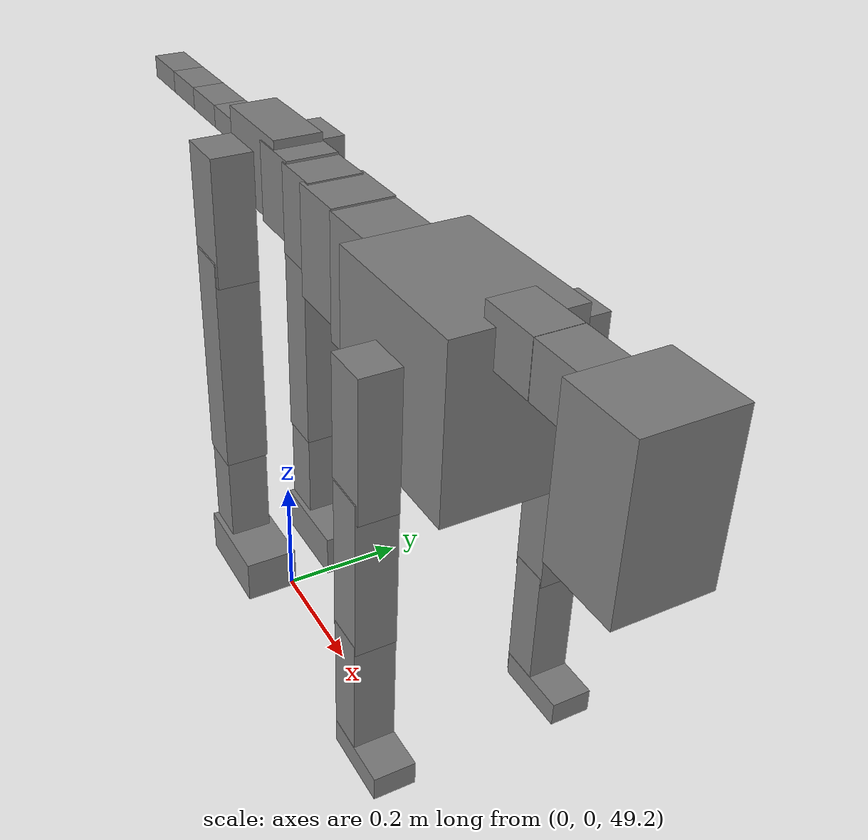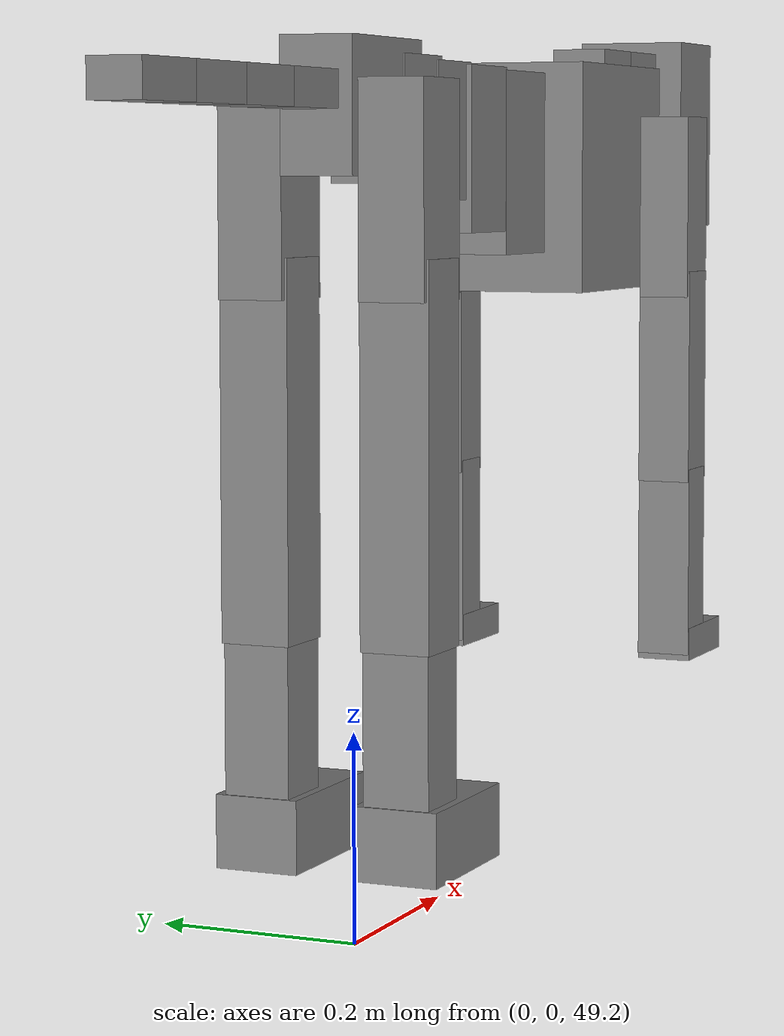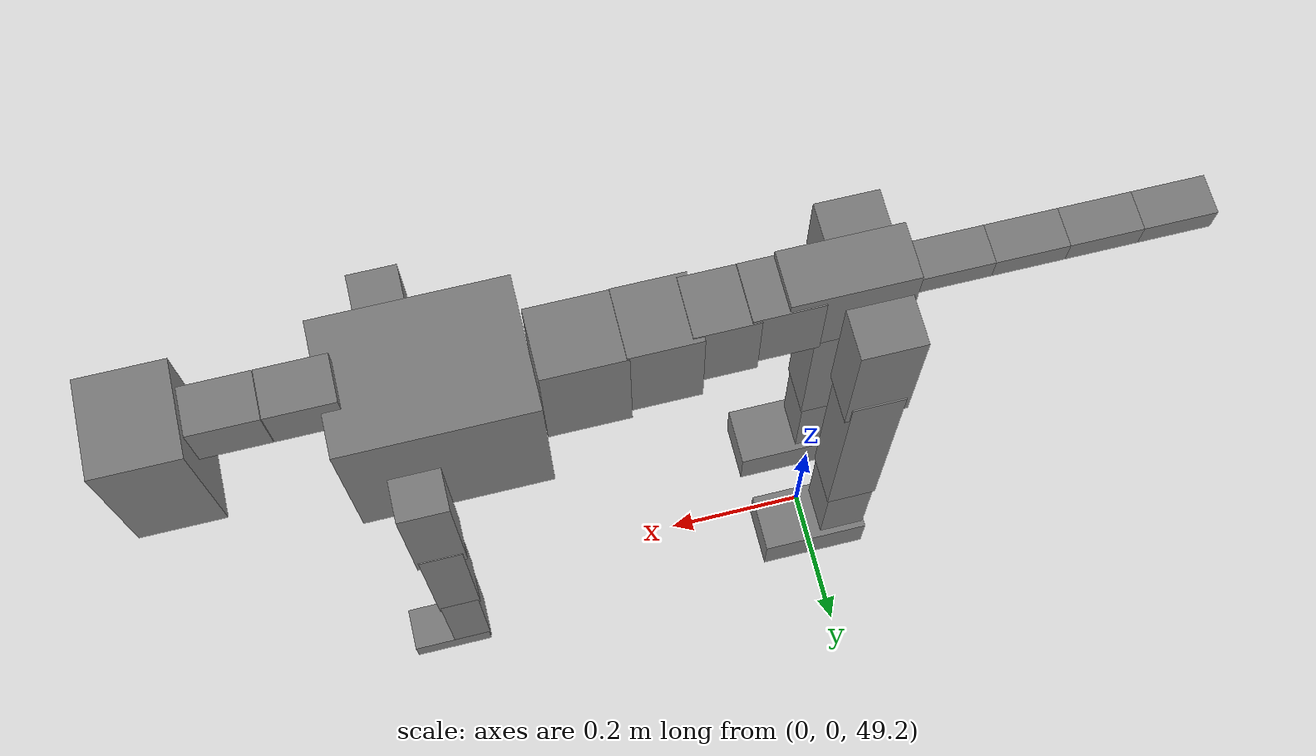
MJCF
<mujoco model="dog">

    <default>
        <joint armature="0.02" stiffness="1" damping="0.2" limited="true"/>
        <geom condim="3" friction="1 0.05 0.05" margin="0.01"/>
        <motor ctrllimited="true" ctrlrange="-1.0 1.0" forcelimited="true" gear="50"/>
    </default>

    <compiler inertiafromgeom="true" angle="radian"/>

    <option timestep="0.016" iterations="50" tolerance="1e-10" solver="Newton" jacobian="dense" cone="pyramidal"/>

    <size nconmax="20000" njmax="60000" nstack="5000000"/>
    <visual>
        <map force="0.1" zfar="30"/>
        <rgba haze="0.15 0.25 0.35 1"/>
        <quality shadowsize="2048"/>
        <global offwidth="800" offheight="800"/>
    </visual>

    <asset>
        <texture type="skybox" builtin="gradient" rgb1="0.3 0.5 0.7" rgb2="0 0 0" width="512" height="512"/>
        <texture name="texplane" type="2d" builtin="checker" rgb1=".2 .3 .4" rgb2=".1 0.15 0.2" width="512" height="512"
                 mark="cross" markrgb=".8 .8 .8"/>
        <texture name="texgeom" type="cube" builtin="flat" mark="cross" width="127" height="1278" rgb1="0.8 0.6 0.4"
                 rgb2="0.8 0.6 0.4" markrgb="1 1 1" random="0.01"/>

        <material name="matplane" reflectance="0.3" texture="texplane" texrepeat="1 1" texuniform="true"/>
        <material name="matgeom" texture="texgeom" texuniform="true" rgba="0.8 0.6 .4 1"/>
    </asset>

    <worldbody>
        <geom name="floor" pos="0 0 0" size="0 0 .25" type="plane" material="matplane" condim="3"/>

        <light directional="false" diffuse=".2 .2 .2" specular="0 0 0" pos="0 0 5" dir="0 0 -1" castshadow="false"/>
        <light mode="targetbodycom" target="torso" directional="false" diffuse=".8 .8 .8" specular="0.3 0.3 0.3"
               pos="0 0 4.0" dir="0 0 -1"/>

        <body name="root" pos="0 0 50">
            <freejoint name="root_1"/>
            <geom type="box" pos="0 0 -0.02" size="0.0774  0.0358  0.063" density="2030"/>

            <body name="spine1" pos="0.054 0 0">
                <joint name="spine1_y" axis="0 1 0" range="0 0.7" limited="true"/>
                <geom type="box" pos="0.02375 0 -0.03" size="0.04375  0.0375  0.05985" density="2030"/>

                <body name="spine2" pos="0.0612 0 0">
                    <joint name="spine2_y" axis="0 1 0" range="-0.15 0.15" limited="true"/>
                    <geom type="box" pos="0.03555  0  -0.04" size="0.04055  0.039  0.06615" density="2030"/>

                    <body name="spine3" pos="0.0730 0 0">
                        <joint name="spine3_y" axis="0 1 0" range="-0.15 0.15" limited="true"/>
                        <geom type="box" pos="0.03555  0  -0.057" size="0.04555  0.0445  0.081" density="2030"/>

                        <body name="spine4" pos="0.0780 0 0">
                            <joint name="spine4_y" axis="0 1 0" range="-0.15 0.15" limited="true"/>
                            <geom type="box" pos="0.05265  0  -0.07" size="0.05265  0.045  0.09135" density="2030"/>

                            <body name="torso" pos="0.1082 0 0">
                                <joint name="torso_y" axis="0 1 0" range="-0.15 0.15" limited="true"/>
                                <geom type="box" pos="0.11925  0  -0.085" size="0.11925  0.085  0.11745"
                                      density="2030"/>

                                <body name="neck1" pos="0.2160  0   0.0180">
                                    <joint name="neck1_y" axis="0 1 0" range="-1.2  -1" limited="true"/>
                                    <geom type="box" pos="0.0423  0  0" size="0.0423  0.03  0.036" density="2325"/>

                                    <body name="neck2" pos="0.0853  0  0">
                                        <joint name="neck2_y" axis="0 1 0" range="0.1  0" limited="true"/>
                                        <geom type="box" pos="0.0423  0  0" size="0.0423  0.03  0.036" density="2325"/>

                                        <body name="head" pos="0.0853  0  0">
                                            <joint name="head_y" axis="0 1 0" range="-0.3  -0.2" limited="true"/>
                                            <geom type="box" pos="0.0531  0  -0.055" size="0.0531  0.06  0.1044"
                                                  density="4030"/>

                                        </body>
                                    </body>
                                </body>

                                <body name="front_shoulder" pos="0.156  0   -0.0480">
                                    <joint name="front_shoulder_y" axis="0 1 0" range="-1 1.5" limited="true"/>
                                    <geom type="box" pos="0 0.13 -0.0680" size="0.0308  0.0263  0.0946" density="1158"/>
                                    <geom type="box" pos="0 -0.13 -0.0680" size="0.0308  0.0263  0.0946"
                                          density="1158"/>

                                    <body name="front_elbow" pos="0  0  -0.1359">
                                        <joint name="front_elbow_y" axis="0 1 0" range="-2 0" limited="true"/>
                                        <geom type="box" pos="0 0.13 -0.1113" size="0.0271  0.0277  0.1113"
                                              density="1081"/>
                                        <geom type="box" pos="0 -0.13 -0.1113" size="0.0271  0.0277  0.1113"
                                              density="1081"/>

                                        <body name="front_wrist" pos="0  0  -0.2225">
                                            <joint name="front_wrist_y" axis="0 1 0" range="-0.2 0" limited="true"/>
                                            <geom type="box" pos="0 0.13 -0.0859" size="0.0252  0.0280  0.0991"
                                                  density="1664"/>
                                            <geom type="box" pos="0 -0.13 -0.0859" size="0.0252  0.0280  0.0991"
                                                  density="1664"/>

                                            <body name="front_finger_end" pos="0  0  -0.1719">
                                                <joint name="front_finger_y" axis="0 1 0" range="-0.4 1"
                                                       limited="true"/>
                                                <geom type="box" pos="0.0284  0.13  -0.0022"
                                                      size="0.0520  0.0284  0.0172" density="1515"/>
                                                <geom type="box" pos="0.0284  -0.13  -0.0022"
                                                      size="0.0520  0.0284  0.0172" density="1515"/>

                                            </body>

                                        </body>
                                    </body>
                                </body>

                            </body>
                        </body>
                    </body>
                </body>
            </body>

            <body name="back_hip" pos="-0.03 0 -0.018">
                <joint name="back_hip_y" axis="0 1 0" range="-1.5 0.3" limited="true"/>
                <geom type="box" pos="0 0.07 -0.0772" size="0.0407  0.0319  0.1000" density="1154"/>
                <geom type="box" pos="0 -0.07 -0.0772" size="0.0407  0.0319  0.1000" density="1154"/>

                <body name="back_knee" pos="0  0  -0.1543">
                    <joint name="back_knee_y" axis="0 1 0" range="0 2.8" limited="true"/>
                    <geom type="box" pos="0 0.07 -0.1622" size="0.0344  0.0340  0.1777" density="1227"/>
                    <geom type="box" pos="0 -0.07 -0.1622" size="0.0344  0.0340  0.1777" density="1227"/>

                    <body name="back_ankle" pos="0  0  -0.3243">
                        <joint name="back_ankle_y" axis="0 1 0" range="-2.2 0" limited="true"/>
                        <geom type="box" pos="0 0.07 -0.0862" size="0.0323  0.0323  0.0975" density="1284"/>
                        <geom type="box" pos="0 -0.07 -0.0862" size="0.0323  0.0323  0.0975" density="1284"/>

                        <body name="back_toe_end" pos="0  0  -0.1724">
                            <joint name="back_toe_y" axis="0 1 0" range="-0.4 1" limited="true"/>
                            <geom type="box" pos="0.0411  0.07  -0.0198" size="0.0754  0.0411  0.0348" density="1515"/>
                            <geom type="box" pos="0.0411  -0.07  -0.0198" size="0.0754  0.0411  0.0348" density="1515"/>

                        </body>
                    </body>
                </body>
            </body>

            <body name="tail1" pos="-0.074 0 -0.006">
                <joint name="tail1_y" axis="0 1 0" range="-0.2 0.2" limited="true"/>
                <geom type="box" pos="-0.0536  0  0" size="0.045  0.025  0.0175" density="1587"/>

                <body name="tail2" pos="-0.09 0 0">
                    <joint name="tail2_y" axis="0 1 0" range="-0.2 0.2" limited="true"/>
                    <geom type="box" pos="-0.0536  0  0" size="0.045  0.025  0.0175" density="1587"/>

                    <body name="tail3" pos="-0.09 0 0">
                        <joint name="tail3_y" axis="0 1 0" range="-0.2 0.2" limited="true"/>
                        <geom type="box" pos="-0.0536  0  0" size="0.045  0.025  0.0175" density="1587"/>

                        <body name="tail4" pos="-0.09 0 0">
                            <joint name="tail4_y" axis="0 1 0" range="-0.2 0.2" limited="true"/>
                            <geom type="box" pos="-0.0536  0  0" size="0.045  0.025  0.0175" density="1587"/>

                        </body>
                    </body>
                </body>
            </body>
        </body>
    </worldbody>

    <actuator>
        <motor joint="spine1_y" forcerange="-150 150     "/>
        <motor joint="spine2_y" forcerange="-150 150     "/>
        <motor joint="spine3_y" forcerange="-150 150     "/>
        <motor joint="spine4_y" forcerange="-150 150     "/>
        <motor joint="torso_y" forcerange="-150 150     "/>
        <motor joint="neck1_y" forcerange="-100 100       "/>
        <motor joint="neck2_y" forcerange="-100 100       "/>
        <motor joint="head_y" forcerange="-150 150       "/>
        <motor joint="front_shoulder_y" forcerange="-135.86 139.60"/>
        <motor joint="front_elbow_y" forcerange="-106.00 195.55"/>
        <motor joint="front_wrist_y" forcerange="-96.15 127.72"/>
        <motor joint="front_finger_y" forcerange="-80.95 30.31"/>
        <motor joint="back_hip_y" forcerange="-311.44 314.37"/>
        <motor joint="back_knee_y" forcerange="-345.66 348.23"/>
        <motor joint="back_angle_y" forcerange="-234.43 182.07"/>
        <motor joint="back_toe_y" forcerange="-111.22 137.76"/>
        <motor joint="tail1_y" forcerange="-50 50     "/>
        <motor joint="tail2_y" forcerange="-50 50     "/>
        <motor joint="tail3_y" forcerange="-50 50     "/>
        <motor joint="tail4_y" forcerange="-50 50     "/>
    </actuator>
</mujoco>
